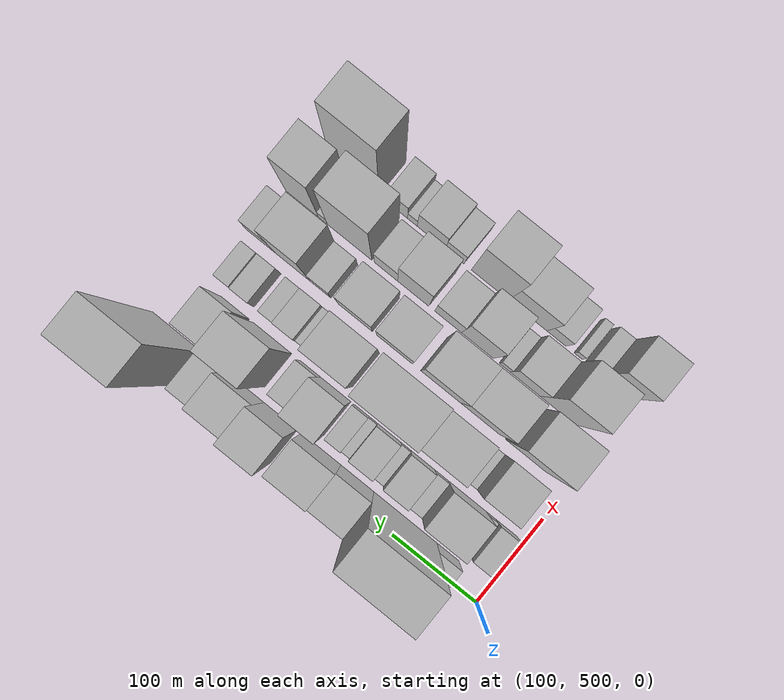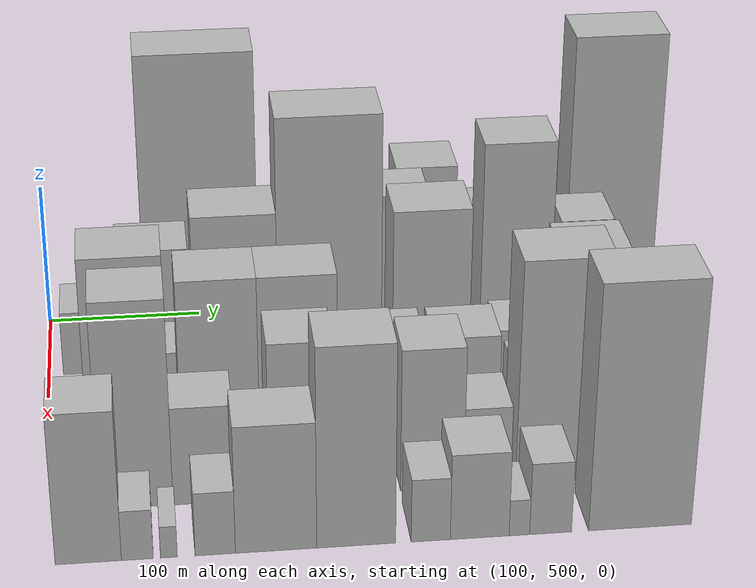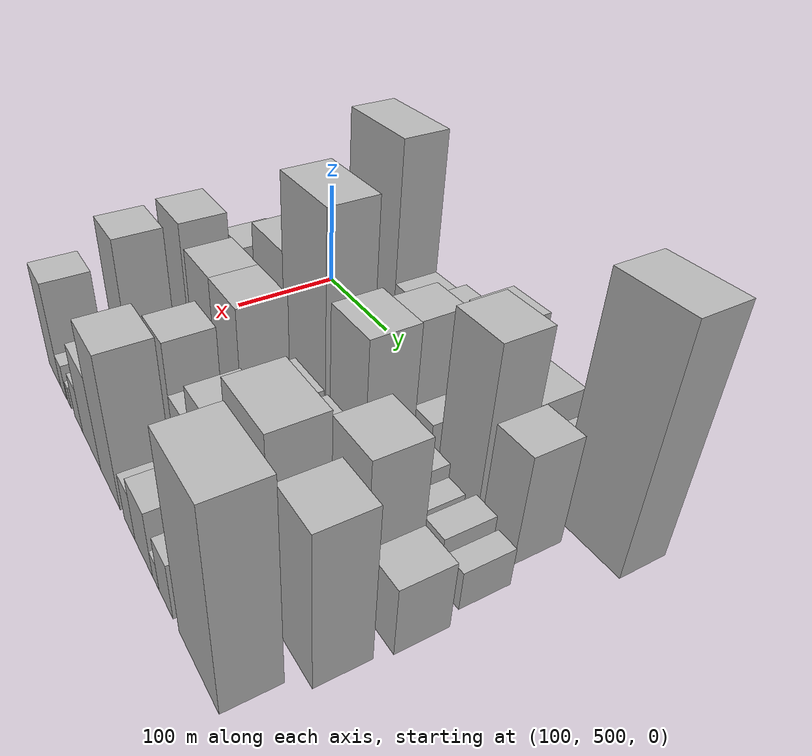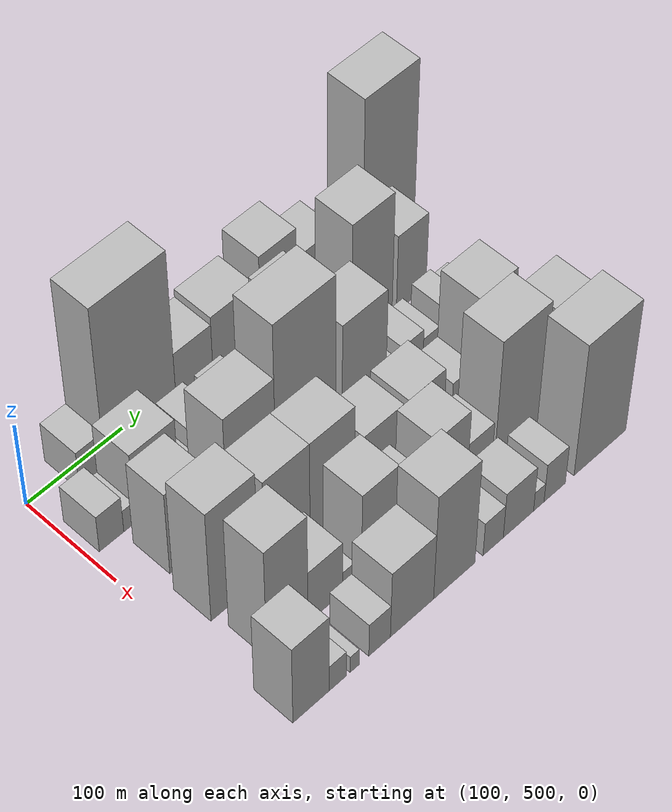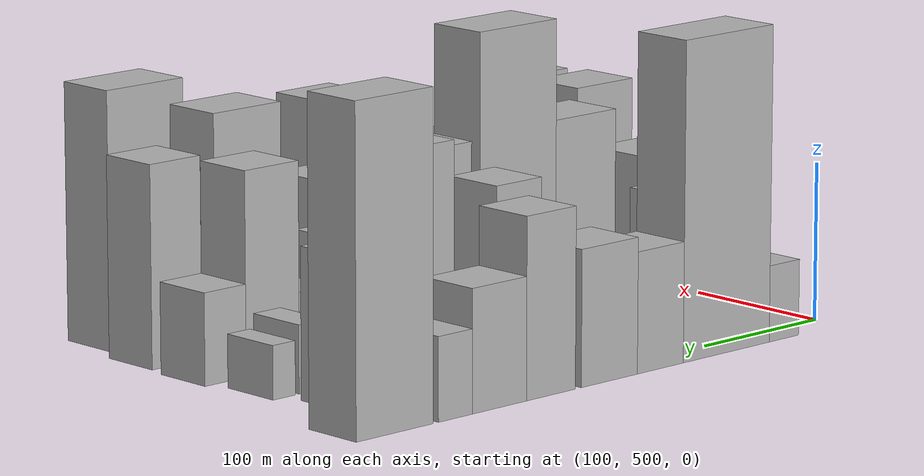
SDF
<sdf version="1.6">
 <world name="default">
  <model name="building_44">
   <static>1</static>
   <pose>100.0000 550.2050 0 0.000000 0.000000 0.000000</pose>
   <link name="link">
    <pose>0 0 24.00 0 0 0</pose>
    <collision name="collision"><geometry><box><size>40.0000 26.4977 48.0000</size></box></geometry></collision>
    <visual name="visual">
     <cast_shadows>0</cast_shadows>
     <geometry><box><size>40.0000 26.4977 48.0000</size></box></geometry>
     <material>
      <script>
       <uri>model://HANNAS_wall/materials/scripts</uri>
       <uri>model://HANNAS_wall/materials/textures</uri>
       <name>vrc/HANNAS_wall</name>
      </script>
     </material>
    </visual>
   </link>
  </model>
  <model name="building_45">
   <static>1</static>
   <pose>100.0000 601.4771 0 0.000000 0.000000 0.000000</pose>
   <link name="link">
    <pose>0 0 99.00 0 0 0</pose>
    <collision name="collision"><geometry><box><size>40.0000 76.0464 198.0000</size></box></geometry></collision>
    <visual name="visual">
     <cast_shadows>0</cast_shadows>
     <geometry><box><size>40.0000 76.0464 198.0000</size></box></geometry>
     <material>
      <script>
       <uri>model://HANNAS_wall/materials/scripts</uri>
       <uri>model://HANNAS_wall/materials/textures</uri>
       <name>vrc/HANNAS_wall</name>
      </script>
     </material>
    </visual>
   </link>
  </model>
  <model name="building_46">
   <static>1</static>
   <pose>100.0000 659.3488 0 0.000000 0.000000 0.000000</pose>
   <link name="link">
    <pose>0 0 37.50 0 0 0</pose>
    <collision name="collision"><geometry><box><size>40.0000 39.6969 75.0000</size></box></geometry></collision>
    <visual name="visual">
     <cast_shadows>0</cast_shadows>
     <geometry><box><size>40.0000 39.6969 75.0000</size></box></geometry>
     <material>
      <script>
       <uri>model://HANNAS_wall/materials/scripts</uri>
       <uri>model://HANNAS_wall/materials/textures</uri>
       <name>vrc/HANNAS_wall</name>
      </script>
     </material>
    </visual>
   </link>
  </model>
  <model name="building_47">
   <static>1</static>
   <pose>100.0000 702.9278 0 0.000000 0.000000 0.000000</pose>
   <link name="link">
    <pose>0 0 42.00 0 0 0</pose>
    <collision name="collision"><geometry><box><size>40.0000 47.4612 84.0000</size></box></geometry></collision>
    <visual name="visual">
     <cast_shadows>0</cast_shadows>
     <geometry><box><size>40.0000 47.4612 84.0000</size></box></geometry>
     <material>
      <script>
       <uri>model://HANNAS_wall/materials/scripts</uri>
       <uri>model://HANNAS_wall/materials/textures</uri>
       <name>vrc/HANNAS_wall</name>
      </script>
     </material>
    </visual>
   </link>
  </model>
  <model name="building_48">
   <static>1</static>
   <pose>100.0000 751.9403 0 0.000000 0.000000 0.000000</pose>
   <link name="link">
    <pose>0 0 55.50 0 0 0</pose>
    <collision name="collision"><geometry><box><size>40.0000 40.5638 111.0000</size></box></geometry></collision>
    <visual name="visual">
     <cast_shadows>0</cast_shadows>
     <geometry><box><size>40.0000 40.5638 111.0000</size></box></geometry>
     <material>
      <script>
       <uri>model://HANNAS_wall/materials/scripts</uri>
       <uri>model://HANNAS_wall/materials/textures</uri>
       <name>vrc/HANNAS_wall</name>
      </script>
     </material>
    </visual>
   </link>
  </model>
  <model name="building_49">
   <static>1</static>
   <pose>100.0000 794.2953 0 0.000000 0.000000 0.000000</pose>
   <link name="link">
    <pose>0 0 37.50 0 0 0</pose>
    <collision name="collision"><geometry><box><size>40.0000 44.1461 75.0000</size></box></geometry></collision>
    <visual name="visual">
     <cast_shadows>0</cast_shadows>
     <geometry><box><size>40.0000 44.1461 75.0000</size></box></geometry>
     <material>
      <script>
       <uri>model://HANNAS_wall/materials/scripts</uri>
       <uri>model://HANNAS_wall/materials/textures</uri>
       <name>vrc/HANNAS_wall</name>
      </script>
     </material>
    </visual>
   </link>
  </model>
  <model name="building_50">
   <static>1</static>
   <pose>100.0000 829.9106 0 0.000000 0.000000 0.000000</pose>
   <link name="link">
    <pose>0 0 25.50 0 0 0</pose>
    <collision name="collision"><geometry><box><size>40.0000 27.0845 51.0000</size></box></geometry></collision>
    <visual name="visual">
     <cast_shadows>0</cast_shadows>
     <geometry><box><size>40.0000 27.0845 51.0000</size></box></geometry>
     <material>
      <script>
       <uri>model://HANNAS_wall/materials/scripts</uri>
       <uri>model://HANNAS_wall/materials/textures</uri>
       <name>vrc/HANNAS_wall</name>
      </script>
     </material>
    </visual>
   </link>
  </model>
  <model name="building_51">
   <static>1</static>
   <pose>100.0000 877.7464 0 0.000000 0.000000 0.000000</pose>
   <link name="link">
    <pose>0 0 99.00 0 0 0</pose>
    <collision name="collision"><geometry><box><size>40.0000 60.5870 198.0000</size></box></geometry></collision>
    <visual name="visual">
     <cast_shadows>0</cast_shadows>
     <geometry><box><size>40.0000 60.5870 198.0000</size></box></geometry>
     <material>
      <script>
       <uri>model://HANNAS_wall/materials/scripts</uri>
       <uri>model://HANNAS_wall/materials/textures</uri>
       <name>vrc/HANNAS_wall</name>
      </script>
     </material>
    </visual>
   </link>
  </model>
  <model name="building_92">
   <static>1</static>
   <pose>152.0000 521.8158 0 0.000000 0.000000 0.000000</pose>
   <link name="link">
    <pose>0 0 22.50 0 0 0</pose>
    <collision name="collision"><geometry><box><size>40.0000 25.1232 45.0000</size></box></geometry></collision>
    <visual name="visual">
     <cast_shadows>0</cast_shadows>
     <geometry><box><size>40.0000 25.1232 45.0000</size></box></geometry>
     <material>
      <script>
       <uri>model://HANNAS_wall/materials/scripts</uri>
       <uri>model://HANNAS_wall/materials/textures</uri>
       <name>vrc/HANNAS_wall</name>
      </script>
     </material>
    </visual>
   </link>
  </model>
  <model name="building_93">
   <static>1</static>
   <pose>152.0000 540.1732 0 0.000000 0.000000 0.000000</pose>
   <link name="link">
    <pose>0 0 13.50 0 0 0</pose>
    <collision name="collision"><geometry><box><size>40.0000 11.5915 27.0000</size></box></geometry></collision>
    <visual name="visual">
     <cast_shadows>0</cast_shadows>
     <geometry><box><size>40.0000 11.5915 27.0000</size></box></geometry>
     <material>
      <script>
       <uri>model://HANNAS_wall/materials/scripts</uri>
       <uri>model://HANNAS_wall/materials/textures</uri>
       <name>vrc/HANNAS_wall</name>
      </script>
     </material>
    </visual>
   </link>
  </model>
  <model name="building_94">
   <static>1</static>
   <pose>152.0000 569.0286 0 0.000000 0.000000 0.000000</pose>
   <link name="link">
    <pose>0 0 43.50 0 0 0</pose>
    <collision name="collision"><geometry><box><size>40.0000 46.1193 87.0000</size></box></geometry></collision>
    <visual name="visual">
     <cast_shadows>0</cast_shadows>
     <geometry><box><size>40.0000 46.1193 87.0000</size></box></geometry>
     <material>
      <script>
       <uri>model://HANNAS_wall/materials/scripts</uri>
       <uri>model://HANNAS_wall/materials/textures</uri>
       <name>vrc/HANNAS_wall</name>
      </script>
     </material>
    </visual>
   </link>
  </model>
  <model name="building_95">
   <static>1</static>
   <pose>152.0000 600.2725 0 0.000000 0.000000 0.000000</pose>
   <link name="link">
    <pose>0 0 15.00 0 0 0</pose>
    <collision name="collision"><geometry><box><size>40.0000 16.3685 30.0000</size></box></geometry></collision>
    <visual name="visual">
     <cast_shadows>0</cast_shadows>
     <geometry><box><size>40.0000 16.3685 30.0000</size></box></geometry>
     <material>
      <script>
       <uri>model://HANNAS_wall/materials/scripts</uri>
       <uri>model://HANNAS_wall/materials/textures</uri>
       <name>vrc/HANNAS_wall</name>
      </script>
     </material>
    </visual>
   </link>
  </model>
  <model name="building_96">
   <static>1</static>
   <pose>152.0000 622.7803 0 0.000000 0.000000 0.000000</pose>
   <link name="link">
    <pose>0 0 27.00 0 0 0</pose>
    <collision name="collision"><geometry><box><size>40.0000 28.6470 54.0000</size></box></geometry></collision>
    <visual name="visual">
     <cast_shadows>0</cast_shadows>
     <geometry><box><size>40.0000 28.6470 54.0000</size></box></geometry>
     <material>
      <script>
       <uri>model://HANNAS_wall/materials/scripts</uri>
       <uri>model://HANNAS_wall/materials/textures</uri>
       <name>vrc/HANNAS_wall</name>
      </script>
     </material>
    </visual>
   </link>
  </model>
  <model name="building_97">
   <static>1</static>
   <pose>152.0000 643.0475 0 0.000000 0.000000 0.000000</pose>
   <link name="link">
    <pose>0 0 12.00 0 0 0</pose>
    <collision name="collision"><geometry><box><size>40.0000 11.8875 24.0000</size></box></geometry></collision>
    <visual name="visual">
     <cast_shadows>0</cast_shadows>
     <geometry><box><size>40.0000 11.8875 24.0000</size></box></geometry>
     <material>
      <script>
       <uri>model://HANNAS_wall/materials/scripts</uri>
       <uri>model://HANNAS_wall/materials/textures</uri>
       <name>vrc/HANNAS_wall</name>
      </script>
     </material>
    </visual>
   </link>
  </model>
  <model name="building_98">
   <static>1</static>
   <pose>152.0000 662.9806 0 0.000000 0.000000 0.000000</pose>
   <link name="link">
    <pose>0 0 25.50 0 0 0</pose>
    <collision name="collision"><geometry><box><size>40.0000 27.9787 51.0000</size></box></geometry></collision>
    <visual name="visual">
     <cast_shadows>0</cast_shadows>
     <geometry><box><size>40.0000 27.9787 51.0000</size></box></geometry>
     <material>
      <script>
       <uri>model://HANNAS_wall/materials/scripts</uri>
       <uri>model://HANNAS_wall/materials/textures</uri>
       <name>vrc/HANNAS_wall</name>
      </script>
     </material>
    </visual>
   </link>
  </model>
  <model name="building_99">
   <static>1</static>
   <pose>152.0000 682.0288 0 0.000000 0.000000 0.000000</pose>
   <link name="link">
    <pose>0 0 12.00 0 0 0</pose>
    <collision name="collision"><geometry><box><size>40.0000 10.1176 24.0000</size></box></geometry></collision>
    <visual name="visual">
     <cast_shadows>0</cast_shadows>
     <geometry><box><size>40.0000 10.1176 24.0000</size></box></geometry>
     <material>
      <script>
       <uri>model://HANNAS_wall/materials/scripts</uri>
       <uri>model://HANNAS_wall/materials/textures</uri>
       <name>vrc/HANNAS_wall</name>
      </script>
     </material>
    </visual>
   </link>
  </model>
  <model name="building_100">
   <static>1</static>
   <pose>152.0000 696.5672 0 0.000000 0.000000 0.000000</pose>
   <link name="link">
    <pose>0 0 18.00 0 0 0</pose>
    <collision name="collision"><geometry><box><size>40.0000 18.9594 36.0000</size></box></geometry></collision>
    <visual name="visual">
     <cast_shadows>0</cast_shadows>
     <geometry><box><size>40.0000 18.9594 36.0000</size></box></geometry>
     <material>
      <script>
       <uri>model://HANNAS_wall/materials/scripts</uri>
       <uri>model://HANNAS_wall/materials/textures</uri>
       <name>vrc/HANNAS_wall</name>
      </script>
     </material>
    </visual>
   </link>
  </model>
  <model name="building_101">
   <static>1</static>
   <pose>152.0000 727.6724 0 0.000000 0.000000 0.000000</pose>
   <link name="link">
    <pose>0 0 58.50 0 0 0</pose>
    <collision name="collision"><geometry><box><size>40.0000 37.2510 117.0000</size></box></geometry></collision>
    <visual name="visual">
     <cast_shadows>0</cast_shadows>
     <geometry><box><size>40.0000 37.2510 117.0000</size></box></geometry>
     <material>
      <script>
       <uri>model://HANNAS_wall/materials/scripts</uri>
       <uri>model://HANNAS_wall/materials/textures</uri>
       <name>vrc/HANNAS_wall</name>
      </script>
     </material>
    </visual>
   </link>
  </model>
  <model name="building_102">
   <static>1</static>
   <pose>152.0000 758.6101 0 0.000000 0.000000 0.000000</pose>
   <link name="link">
    <pose>0 0 22.50 0 0 0</pose>
    <collision name="collision"><geometry><box><size>40.0000 24.6244 45.0000</size></box></geometry></collision>
    <visual name="visual">
     <cast_shadows>0</cast_shadows>
     <geometry><box><size>40.0000 24.6244 45.0000</size></box></geometry>
     <material>
      <script>
       <uri>model://HANNAS_wall/materials/scripts</uri>
       <uri>model://HANNAS_wall/materials/textures</uri>
       <name>vrc/HANNAS_wall</name>
      </script>
     </material>
    </visual>
   </link>
  </model>
  <model name="building_103">
   <static>1</static>
   <pose>152.0000 804.1231 0 0.000000 0.000000 0.000000</pose>
   <link name="link">
    <pose>0 0 75.00 0 0 0</pose>
    <collision name="collision"><geometry><box><size>40.0000 46.4016 150.0000</size></box></geometry></collision>
    <visual name="visual">
     <cast_shadows>0</cast_shadows>
     <geometry><box><size>40.0000 46.4016 150.0000</size></box></geometry>
     <material>
      <script>
       <uri>model://HANNAS_wall/materials/scripts</uri>
       <uri>model://HANNAS_wall/materials/textures</uri>
       <name>vrc/HANNAS_wall</name>
      </script>
     </material>
    </visual>
   </link>
  </model>
  <model name="building_104">
   <static>1</static>
   <pose>152.0000 849.6271 0 0.000000 0.000000 0.000000</pose>
   <link name="link">
    <pose>0 0 46.50 0 0 0</pose>
    <collision name="collision"><geometry><box><size>40.0000 34.6065 93.0000</size></box></geometry></collision>
    <visual name="visual">
     <cast_shadows>0</cast_shadows>
     <geometry><box><size>40.0000 34.6065 93.0000</size></box></geometry>
     <material>
      <script>
       <uri>model://HANNAS_wall/materials/scripts</uri>
       <uri>model://HANNAS_wall/materials/textures</uri>
       <name>vrc/HANNAS_wall</name>
      </script>
     </material>
    </visual>
   </link>
  </model>
  <model name="building_142">
   <static>1</static>
   <pose>204.0000 552.2413 0 0.000000 0.000000 0.000000</pose>
   <link name="link">
    <pose>0 0 51.00 0 0 0</pose>
    <collision name="collision"><geometry><box><size>40.0000 38.9431 102.0000</size></box></geometry></collision>
    <visual name="visual">
     <cast_shadows>0</cast_shadows>
     <geometry><box><size>40.0000 38.9431 102.0000</size></box></geometry>
     <material>
      <script>
       <uri>model://HANNAS_wall/materials/scripts</uri>
       <uri>model://HANNAS_wall/materials/textures</uri>
       <name>vrc/HANNAS_wall</name>
      </script>
     </material>
    </visual>
   </link>
  </model>
  <model name="building_143">
   <static>1</static>
   <pose>204.0000 582.3987 0 0.000000 0.000000 0.000000</pose>
   <link name="link">
    <pose>0 0 21.00 0 0 0</pose>
    <collision name="collision"><geometry><box><size>40.0000 21.3717 42.0000</size></box></geometry></collision>
    <visual name="visual">
     <cast_shadows>0</cast_shadows>
     <geometry><box><size>40.0000 21.3717 42.0000</size></box></geometry>
     <material>
      <script>
       <uri>model://HANNAS_wall/materials/scripts</uri>
       <uri>model://HANNAS_wall/materials/textures</uri>
       <name>vrc/HANNAS_wall</name>
      </script>
     </material>
    </visual>
   </link>
  </model>
  <model name="building_144">
   <static>1</static>
   <pose>204.0000 619.0191 0 0.000000 0.000000 0.000000</pose>
   <link name="link">
    <pose>0 0 67.50 0 0 0</pose>
    <collision name="collision"><geometry><box><size>40.0000 51.8690 135.0000</size></box></geometry></collision>
    <visual name="visual">
     <cast_shadows>0</cast_shadows>
     <geometry><box><size>40.0000 51.8690 135.0000</size></box></geometry>
     <material>
      <script>
       <uri>model://HANNAS_wall/materials/scripts</uri>
       <uri>model://HANNAS_wall/materials/textures</uri>
       <name>vrc/HANNAS_wall</name>
      </script>
     </material>
    </visual>
   </link>
  </model>
  <model name="building_145">
   <static>1</static>
   <pose>204.0000 677.3726 0 0.000000 0.000000 0.000000</pose>
   <link name="link">
    <pose>0 0 99.00 0 0 0</pose>
    <collision name="collision"><geometry><box><size>40.0000 64.8381 198.0000</size></box></geometry></collision>
    <visual name="visual">
     <cast_shadows>0</cast_shadows>
     <geometry><box><size>40.0000 64.8381 198.0000</size></box></geometry>
     <material>
      <script>
       <uri>model://HANNAS_wall/materials/scripts</uri>
       <uri>model://HANNAS_wall/materials/textures</uri>
       <name>vrc/HANNAS_wall</name>
      </script>
     </material>
    </visual>
   </link>
  </model>
  <model name="building_146">
   <static>1</static>
   <pose>204.0000 741.1813 0 0.000000 0.000000 0.000000</pose>
   <link name="link">
    <pose>0 0 66.00 0 0 0</pose>
    <collision name="collision"><geometry><box><size>40.0000 48.7793 132.0000</size></box></geometry></collision>
    <visual name="visual">
     <cast_shadows>0</cast_shadows>
     <geometry><box><size>40.0000 48.7793 132.0000</size></box></geometry>
     <material>
      <script>
       <uri>model://HANNAS_wall/materials/scripts</uri>
       <uri>model://HANNAS_wall/materials/textures</uri>
       <name>vrc/HANNAS_wall</name>
      </script>
     </material>
    </visual>
   </link>
  </model>
  <model name="building_147">
   <static>1</static>
   <pose>204.0000 777.0443 0 0.000000 0.000000 0.000000</pose>
   <link name="link">
    <pose>0 0 13.50 0 0 0</pose>
    <collision name="collision"><geometry><box><size>40.0000 12.9466 27.0000</size></box></geometry></collision>
    <visual name="visual">
     <cast_shadows>0</cast_shadows>
     <geometry><box><size>40.0000 12.9466 27.0000</size></box></geometry>
     <material>
      <script>
       <uri>model://HANNAS_wall/materials/scripts</uri>
       <uri>model://HANNAS_wall/materials/textures</uri>
       <name>vrc/HANNAS_wall</name>
      </script>
     </material>
    </visual>
   </link>
  </model>
  <model name="building_148">
   <static>1</static>
   <pose>204.0000 795.7457 0 0.000000 0.000000 0.000000</pose>
   <link name="link">
    <pose>0 0 22.50 0 0 0</pose>
    <collision name="collision"><geometry><box><size>40.0000 24.4561 45.0000</size></box></geometry></collision>
    <visual name="visual">
     <cast_shadows>0</cast_shadows>
     <geometry><box><size>40.0000 24.4561 45.0000</size></box></geometry>
     <material>
      <script>
       <uri>model://HANNAS_wall/materials/scripts</uri>
       <uri>model://HANNAS_wall/materials/textures</uri>
       <name>vrc/HANNAS_wall</name>
      </script>
     </material>
    </visual>
   </link>
  </model>
  <model name="building_149">
   <static>1</static>
   <pose>204.0000 817.1471 0 0.000000 0.000000 0.000000</pose>
   <link name="link">
    <pose>0 0 16.50 0 0 0</pose>
    <collision name="collision"><geometry><box><size>40.0000 18.3468 33.0000</size></box></geometry></collision>
    <visual name="visual">
     <cast_shadows>0</cast_shadows>
     <geometry><box><size>40.0000 18.3468 33.0000</size></box></geometry>
     <material>
      <script>
       <uri>model://HANNAS_wall/materials/scripts</uri>
       <uri>model://HANNAS_wall/materials/textures</uri>
       <name>vrc/HANNAS_wall</name>
      </script>
     </material>
    </visual>
   </link>
  </model>
  <model name="building_150">
   <static>1</static>
   <pose>204.0000 847.0164 0 0.000000 0.000000 0.000000</pose>
   <link name="link">
    <pose>0 0 21.00 0 0 0</pose>
    <collision name="collision"><geometry><box><size>40.0000 21.3917 42.0000</size></box></geometry></collision>
    <visual name="visual">
     <cast_shadows>0</cast_shadows>
     <geometry><box><size>40.0000 21.3917 42.0000</size></box></geometry>
     <material>
      <script>
       <uri>model://HANNAS_wall/materials/scripts</uri>
       <uri>model://HANNAS_wall/materials/textures</uri>
       <name>vrc/HANNAS_wall</name>
      </script>
     </material>
    </visual>
   </link>
  </model>
  <model name="building_151">
   <static>1</static>
   <pose>204.0000 869.5550 0 0.000000 0.000000 0.000000</pose>
   <link name="link">
    <pose>0 0 16.50 0 0 0</pose>
    <collision name="collision"><geometry><box><size>40.0000 17.6856 33.0000</size></box></geometry></collision>
    <visual name="visual">
     <cast_shadows>0</cast_shadows>
     <geometry><box><size>40.0000 17.6856 33.0000</size></box></geometry>
     <material>
      <script>
       <uri>model://HANNAS_wall/materials/scripts</uri>
       <uri>model://HANNAS_wall/materials/textures</uri>
       <name>vrc/HANNAS_wall</name>
      </script>
     </material>
    </visual>
   </link>
  </model>
  <model name="building_194">
   <static>1</static>
   <pose>256.0000 549.7750 0 0.000000 0.000000 0.000000</pose>
   <link name="link">
    <pose>0 0 69.00 0 0 0</pose>
    <collision name="collision"><geometry><box><size>40.0000 49.1887 138.0000</size></box></geometry></collision>
    <visual name="visual">
     <cast_shadows>0</cast_shadows>
     <geometry><box><size>40.0000 49.1887 138.0000</size></box></geometry>
     <material>
      <script>
       <uri>model://HANNAS_wall/materials/scripts</uri>
       <uri>model://HANNAS_wall/materials/textures</uri>
       <name>vrc/HANNAS_wall</name>
      </script>
     </material>
    </visual>
   </link>
  </model>
  <model name="building_195">
   <static>1</static>
   <pose>256.0000 605.2740 0 0.000000 0.000000 0.000000</pose>
   <link name="link">
    <pose>0 0 60.00 0 0 0</pose>
    <collision name="collision"><geometry><box><size>40.0000 47.8093 120.0000</size></box></geometry></collision>
    <visual name="visual">
     <cast_shadows>0</cast_shadows>
     <geometry><box><size>40.0000 47.8093 120.0000</size></box></geometry>
     <material>
      <script>
       <uri>model://HANNAS_wall/materials/scripts</uri>
       <uri>model://HANNAS_wall/materials/textures</uri>
       <name>vrc/HANNAS_wall</name>
      </script>
     </material>
    </visual>
   </link>
  </model>
  <model name="building_196">
   <static>1</static>
   <pose>256.0000 652.9921 0 0.000000 0.000000 0.000000</pose>
   <link name="link">
    <pose>0 0 60.00 0 0 0</pose>
    <collision name="collision"><geometry><box><size>40.0000 47.6268 120.0000</size></box></geometry></collision>
    <visual name="visual">
     <cast_shadows>0</cast_shadows>
     <geometry><box><size>40.0000 47.6268 120.0000</size></box></geometry>
     <material>
      <script>
       <uri>model://HANNAS_wall/materials/scripts</uri>
       <uri>model://HANNAS_wall/materials/textures</uri>
       <name>vrc/HANNAS_wall</name>
      </script>
     </material>
    </visual>
   </link>
  </model>
  <model name="building_197">
   <static>1</static>
   <pose>256.0000 708.3618 0 0.000000 0.000000 0.000000</pose>
   <link name="link">
    <pose>0 0 36.00 0 0 0</pose>
    <collision name="collision"><geometry><box><size>40.0000 43.1126 72.0000</size></box></geometry></collision>
    <visual name="visual">
     <cast_shadows>0</cast_shadows>
     <geometry><box><size>40.0000 43.1126 72.0000</size></box></geometry>
     <material>
      <script>
       <uri>model://HANNAS_wall/materials/scripts</uri>
       <uri>model://HANNAS_wall/materials/textures</uri>
       <name>vrc/HANNAS_wall</name>
      </script>
     </material>
    </visual>
   </link>
  </model>
  <model name="building_198">
   <static>1</static>
   <pose>256.0000 755.5880 0 0.000000 0.000000 0.000000</pose>
   <link name="link">
    <pose>0 0 36.00 0 0 0</pose>
    <collision name="collision"><geometry><box><size>40.0000 41.3399 72.0000</size></box></geometry></collision>
    <visual name="visual">
     <cast_shadows>0</cast_shadows>
     <geometry><box><size>40.0000 41.3399 72.0000</size></box></geometry>
     <material>
      <script>
       <uri>model://HANNAS_wall/materials/scripts</uri>
       <uri>model://HANNAS_wall/materials/textures</uri>
       <name>vrc/HANNAS_wall</name>
      </script>
     </material>
    </visual>
   </link>
  </model>
  <model name="building_199">
   <static>1</static>
   <pose>256.0000 797.8937 0 0.000000 0.000000 0.000000</pose>
   <link name="link">
    <pose>0 0 22.50 0 0 0</pose>
    <collision name="collision"><geometry><box><size>40.0000 25.2714 45.0000</size></box></geometry></collision>
    <visual name="visual">
     <cast_shadows>0</cast_shadows>
     <geometry><box><size>40.0000 25.2714 45.0000</size></box></geometry>
     <material>
      <script>
       <uri>model://HANNAS_wall/materials/scripts</uri>
       <uri>model://HANNAS_wall/materials/textures</uri>
       <name>vrc/HANNAS_wall</name>
      </script>
     </material>
    </visual>
   </link>
  </model>
  <model name="building_200">
   <static>1</static>
   <pose>256.0000 831.9176 0 0.000000 0.000000 0.000000</pose>
   <link name="link">
    <pose>0 0 63.00 0 0 0</pose>
    <collision name="collision"><geometry><box><size>40.0000 42.7765 126.0000</size></box></geometry></collision>
    <visual name="visual">
     <cast_shadows>0</cast_shadows>
     <geometry><box><size>40.0000 42.7765 126.0000</size></box></geometry>
     <material>
      <script>
       <uri>model://HANNAS_wall/materials/scripts</uri>
       <uri>model://HANNAS_wall/materials/textures</uri>
       <name>vrc/HANNAS_wall</name>
      </script>
     </material>
    </visual>
   </link>
  </model>
  <model name="building_201">
   <static>1</static>
   <pose>256.0000 869.6098 0 0.000000 0.000000 0.000000</pose>
   <link name="link">
    <pose>0 0 28.50 0 0 0</pose>
    <collision name="collision"><geometry><box><size>40.0000 32.6079 57.0000</size></box></geometry></collision>
    <visual name="visual">
     <cast_shadows>0</cast_shadows>
     <geometry><box><size>40.0000 32.6079 57.0000</size></box></geometry>
     <material>
      <script>
       <uri>model://HANNAS_wall/materials/scripts</uri>
       <uri>model://HANNAS_wall/materials/textures</uri>
       <name>vrc/HANNAS_wall</name>
      </script>
     </material>
    </visual>
   </link>
  </model>
  <model name="building_236">
   <static>1</static>
   <pose>308.0000 552.9648 0 0.000000 0.000000 0.000000</pose>
   <link name="link">
    <pose>0 0 69.00 0 0 0</pose>
    <collision name="collision"><geometry><box><size>40.0000 42.9699 138.0000</size></box></geometry></collision>
    <visual name="visual">
     <cast_shadows>0</cast_shadows>
     <geometry><box><size>40.0000 42.9699 138.0000</size></box></geometry>
     <material>
      <script>
       <uri>model://HANNAS_wall/materials/scripts</uri>
       <uri>model://HANNAS_wall/materials/textures</uri>
       <name>vrc/HANNAS_wall</name>
      </script>
     </material>
    </visual>
   </link>
  </model>
  <model name="building_237">
   <static>1</static>
   <pose>308.0000 592.6022 0 0.000000 0.000000 0.000000</pose>
   <link name="link">
    <pose>0 0 33.00 0 0 0</pose>
    <collision name="collision"><geometry><box><size>40.0000 36.3050 66.0000</size></box></geometry></collision>
    <visual name="visual">
     <cast_shadows>0</cast_shadows>
     <geometry><box><size>40.0000 36.3050 66.0000</size></box></geometry>
     <material>
      <script>
       <uri>model://HANNAS_wall/materials/scripts</uri>
       <uri>model://HANNAS_wall/materials/textures</uri>
       <name>vrc/HANNAS_wall</name>
      </script>
     </material>
    </visual>
   </link>
  </model>
  <model name="building_238">
   <static>1</static>
   <pose>308.0000 617.2981 0 0.000000 0.000000 0.000000</pose>
   <link name="link">
    <pose>0 0 13.50 0 0 0</pose>
    <collision name="collision"><geometry><box><size>40.0000 13.0868 27.0000</size></box></geometry></collision>
    <visual name="visual">
     <cast_shadows>0</cast_shadows>
     <geometry><box><size>40.0000 13.0868 27.0000</size></box></geometry>
     <material>
      <script>
       <uri>model://HANNAS_wall/materials/scripts</uri>
       <uri>model://HANNAS_wall/materials/textures</uri>
       <name>vrc/HANNAS_wall</name>
      </script>
     </material>
    </visual>
   </link>
  </model>
  <model name="building_239">
   <static>1</static>
   <pose>308.0000 650.1296 0 0.000000 0.000000 0.000000</pose>
   <link name="link">
    <pose>0 0 52.50 0 0 0</pose>
    <collision name="collision"><geometry><box><size>40.0000 38.5762 105.0000</size></box></geometry></collision>
    <visual name="visual">
     <cast_shadows>0</cast_shadows>
     <geometry><box><size>40.0000 38.5762 105.0000</size></box></geometry>
     <material>
      <script>
       <uri>model://HANNAS_wall/materials/scripts</uri>
       <uri>model://HANNAS_wall/materials/textures</uri>
       <name>vrc/HANNAS_wall</name>
      </script>
     </material>
    </visual>
   </link>
  </model>
  <model name="building_240">
   <static>1</static>
   <pose>308.0000 685.6534 0 0.000000 0.000000 0.000000</pose>
   <link name="link">
    <pose>0 0 30.00 0 0 0</pose>
    <collision name="collision"><geometry><box><size>40.0000 32.4712 60.0000</size></box></geometry></collision>
    <visual name="visual">
     <cast_shadows>0</cast_shadows>
     <geometry><box><size>40.0000 32.4712 60.0000</size></box></geometry>
     <material>
      <script>
       <uri>model://HANNAS_wall/materials/scripts</uri>
       <uri>model://HANNAS_wall/materials/textures</uri>
       <name>vrc/HANNAS_wall</name>
      </script>
     </material>
    </visual>
   </link>
  </model>
  <model name="building_241">
   <static>1</static>
   <pose>308.0000 727.7702 0 0.000000 0.000000 0.000000</pose>
   <link name="link">
    <pose>0 0 48.00 0 0 0</pose>
    <collision name="collision"><geometry><box><size>40.0000 37.7623 96.0000</size></box></geometry></collision>
    <visual name="visual">
     <cast_shadows>0</cast_shadows>
     <geometry><box><size>40.0000 37.7623 96.0000</size></box></geometry>
     <material>
      <script>
       <uri>model://HANNAS_wall/materials/scripts</uri>
       <uri>model://HANNAS_wall/materials/textures</uri>
       <name>vrc/HANNAS_wall</name>
      </script>
     </material>
    </visual>
   </link>
  </model>
  <model name="building_242">
   <static>1</static>
   <pose>308.0000 760.7582 0 0.000000 0.000000 0.000000</pose>
   <link name="link">
    <pose>0 0 27.00 0 0 0</pose>
    <collision name="collision"><geometry><box><size>40.0000 28.2138 54.0000</size></box></geometry></collision>
    <visual name="visual">
     <cast_shadows>0</cast_shadows>
     <geometry><box><size>40.0000 28.2138 54.0000</size></box></geometry>
     <material>
      <script>
       <uri>model://HANNAS_wall/materials/scripts</uri>
       <uri>model://HANNAS_wall/materials/textures</uri>
       <name>vrc/HANNAS_wall</name>
      </script>
     </material>
    </visual>
   </link>
  </model>
  <model name="building_243">
   <static>1</static>
   <pose>308.0000 804.9554 0 0.000000 0.000000 0.000000</pose>
   <link name="link">
    <pose>0 0 75.00 0 0 0</pose>
    <collision name="collision"><geometry><box><size>40.0000 54.1804 150.0000</size></box></geometry></collision>
    <visual name="visual">
     <cast_shadows>0</cast_shadows>
     <geometry><box><size>40.0000 54.1804 150.0000</size></box></geometry>
     <material>
      <script>
       <uri>model://HANNAS_wall/materials/scripts</uri>
       <uri>model://HANNAS_wall/materials/textures</uri>
       <name>vrc/HANNAS_wall</name>
      </script>
     </material>
    </visual>
   </link>
  </model>
  <model name="building_244">
   <static>1</static>
   <pose>308.0000 837.4909 0 0.000000 0.000000 0.000000</pose>
   <link name="link">
    <pose>0 0 12.00 0 0 0</pose>
    <collision name="collision"><geometry><box><size>40.0000 10.8906 24.0000</size></box></geometry></collision>
    <visual name="visual">
     <cast_shadows>0</cast_shadows>
     <geometry><box><size>40.0000 10.8906 24.0000</size></box></geometry>
     <material>
      <script>
       <uri>model://HANNAS_wall/materials/scripts</uri>
       <uri>model://HANNAS_wall/materials/textures</uri>
       <name>vrc/HANNAS_wall</name>
      </script>
     </material>
    </visual>
   </link>
  </model>
  <model name="building_245">
   <static>1</static>
   <pose>308.0000 862.7602 0 0.000000 0.000000 0.000000</pose>
   <link name="link">
    <pose>0 0 63.00 0 0 0</pose>
    <collision name="collision"><geometry><box><size>40.0000 39.6481 126.0000</size></box></geometry></collision>
    <visual name="visual">
     <cast_shadows>0</cast_shadows>
     <geometry><box><size>40.0000 39.6481 126.0000</size></box></geometry>
     <material>
      <script>
       <uri>model://HANNAS_wall/materials/scripts</uri>
       <uri>model://HANNAS_wall/materials/textures</uri>
       <name>vrc/HANNAS_wall</name>
      </script>
     </material>
    </visual>
   </link>
  </model>
  <model name="building_290">
   <static>1</static>
   <pose>360.0000 524.9163 0 0.000000 0.000000 0.000000</pose>
   <link name="link">
    <pose>0 0 49.50 0 0 0</pose>
    <collision name="collision"><geometry><box><size>40.0000 37.1264 99.0000</size></box></geometry></collision>
    <visual name="visual">
     <cast_shadows>0</cast_shadows>
     <geometry><box><size>40.0000 37.1264 99.0000</size></box></geometry>
     <material>
      <script>
       <uri>model://HANNAS_wall/materials/scripts</uri>
       <uri>model://HANNAS_wall/materials/textures</uri>
       <name>vrc/HANNAS_wall</name>
      </script>
     </material>
    </visual>
   </link>
  </model>
  <model name="building_291">
   <static>1</static>
   <pose>360.0000 552.4514 0 0.000000 0.000000 0.000000</pose>
   <link name="link">
    <pose>0 0 16.50 0 0 0</pose>
    <collision name="collision"><geometry><box><size>40.0000 17.9438 33.0000</size></box></geometry></collision>
    <visual name="visual">
     <cast_shadows>0</cast_shadows>
     <geometry><box><size>40.0000 17.9438 33.0000</size></box></geometry>
     <material>
      <script>
       <uri>model://HANNAS_wall/materials/scripts</uri>
       <uri>model://HANNAS_wall/materials/textures</uri>
       <name>vrc/HANNAS_wall</name>
      </script>
     </material>
    </visual>
   </link>
  </model>
  <model name="building_292">
   <static>1</static>
   <pose>360.0000 570.1972 0 0.000000 0.000000 0.000000</pose>
   <link name="link">
    <pose>0 0 10.50 0 0 0</pose>
    <collision name="collision"><geometry><box><size>40.0000 9.5479 21.0000</size></box></geometry></collision>
    <visual name="visual">
     <cast_shadows>0</cast_shadows>
     <geometry><box><size>40.0000 9.5479 21.0000</size></box></geometry>
     <material>
      <script>
       <uri>model://HANNAS_wall/materials/scripts</uri>
       <uri>model://HANNAS_wall/materials/textures</uri>
       <name>vrc/HANNAS_wall</name>
      </script>
     </material>
    </visual>
   </link>
  </model>
  <model name="building_293">
   <static>1</static>
   <pose>360.0000 596.3963 0 0.000000 0.000000 0.000000</pose>
   <link name="link">
    <pose>0 0 21.00 0 0 0</pose>
    <collision name="collision"><geometry><box><size>40.0000 22.8503 42.0000</size></box></geometry></collision>
    <visual name="visual">
     <cast_shadows>0</cast_shadows>
     <geometry><box><size>40.0000 22.8503 42.0000</size></box></geometry>
     <material>
      <script>
       <uri>model://HANNAS_wall/materials/scripts</uri>
       <uri>model://HANNAS_wall/materials/textures</uri>
       <name>vrc/HANNAS_wall</name>
      </script>
     </material>
    </visual>
   </link>
  </model>
  <model name="building_294">
   <static>1</static>
   <pose>360.0000 630.9788 0 0.000000 0.000000 0.000000</pose>
   <link name="link">
    <pose>0 0 42.00 0 0 0</pose>
    <collision name="collision"><geometry><box><size>40.0000 46.3147 84.0000</size></box></geometry></collision>
    <visual name="visual">
     <cast_shadows>0</cast_shadows>
     <geometry><box><size>40.0000 46.3147 84.0000</size></box></geometry>
     <material>
      <script>
       <uri>model://HANNAS_wall/materials/scripts</uri>
       <uri>model://HANNAS_wall/materials/textures</uri>
       <name>vrc/HANNAS_wall</name>
      </script>
     </material>
    </visual>
   </link>
  </model>
  <model name="building_295">
   <static>1</static>
   <pose>360.0000 676.7323 0 0.000000 0.000000 0.000000</pose>
   <link name="link">
    <pose>0 0 66.00 0 0 0</pose>
    <collision name="collision"><geometry><box><size>40.0000 45.1922 132.0000</size></box></geometry></collision>
    <visual name="visual">
     <cast_shadows>0</cast_shadows>
     <geometry><box><size>40.0000 45.1922 132.0000</size></box></geometry>
     <material>
      <script>
       <uri>model://HANNAS_wall/materials/scripts</uri>
       <uri>model://HANNAS_wall/materials/textures</uri>
       <name>vrc/HANNAS_wall</name>
      </script>
     </material>
    </visual>
   </link>
  </model>
  <model name="building_296">
   <static>1</static>
   <pose>360.0000 719.6142 0 0.000000 0.000000 0.000000</pose>
   <link name="link">
    <pose>0 0 21.00 0 0 0</pose>
    <collision name="collision"><geometry><box><size>40.0000 22.5717 42.0000</size></box></geometry></collision>
    <visual name="visual">
     <cast_shadows>0</cast_shadows>
     <geometry><box><size>40.0000 22.5717 42.0000</size></box></geometry>
     <material>
      <script>
       <uri>model://HANNAS_wall/materials/scripts</uri>
       <uri>model://HANNAS_wall/materials/textures</uri>
       <name>vrc/HANNAS_wall</name>
      </script>
     </material>
    </visual>
   </link>
  </model>
  <model name="building_297">
   <static>1</static>
   <pose>360.0000 747.9485 0 0.000000 0.000000 0.000000</pose>
   <link name="link">
    <pose>0 0 28.50 0 0 0</pose>
    <collision name="collision"><geometry><box><size>40.0000 34.0969 57.0000</size></box></geometry></collision>
    <visual name="visual">
     <cast_shadows>0</cast_shadows>
     <geometry><box><size>40.0000 34.0969 57.0000</size></box></geometry>
     <material>
      <script>
       <uri>model://HANNAS_wall/materials/scripts</uri>
       <uri>model://HANNAS_wall/materials/textures</uri>
       <name>vrc/HANNAS_wall</name>
      </script>
     </material>
    </visual>
   </link>
  </model>
  <model name="building_298">
   <static>1</static>
   <pose>360.0000 770.9536 0 0.000000 0.000000 0.000000</pose>
   <link name="link">
    <pose>0 0 12.00 0 0 0</pose>
    <collision name="collision"><geometry><box><size>40.0000 11.9133 24.0000</size></box></geometry></collision>
    <visual name="visual">
     <cast_shadows>0</cast_shadows>
     <geometry><box><size>40.0000 11.9133 24.0000</size></box></geometry>
     <material>
      <script>
       <uri>model://HANNAS_wall/materials/scripts</uri>
       <uri>model://HANNAS_wall/materials/textures</uri>
       <name>vrc/HANNAS_wall</name>
      </script>
     </material>
    </visual>
   </link>
  </model>
  <model name="building_299">
   <static>1</static>
   <pose>360.0000 789.1276 0 0.000000 0.000000 0.000000</pose>
   <link name="link">
    <pose>0 0 24.00 0 0 0</pose>
    <collision name="collision"><geometry><box><size>40.0000 24.4347 48.0000</size></box></geometry></collision>
    <visual name="visual">
     <cast_shadows>0</cast_shadows>
     <geometry><box><size>40.0000 24.4347 48.0000</size></box></geometry>
     <material>
      <script>
       <uri>model://HANNAS_wall/materials/scripts</uri>
       <uri>model://HANNAS_wall/materials/textures</uri>
       <name>vrc/HANNAS_wall</name>
      </script>
     </material>
    </visual>
   </link>
  </model>
  <model name="building_300">
   <static>1</static>
   <pose>360.0000 841.5277 0 0.000000 0.000000 0.000000</pose>
   <link name="link">
    <pose>0 0 81.00 0 0 0</pose>
    <collision name="collision"><geometry><box><size>40.0000 60.3656 162.0000</size></box></geometry></collision>
    <visual name="visual">
     <cast_shadows>0</cast_shadows>
     <geometry><box><size>40.0000 60.3656 162.0000</size></box></geometry>
     <material>
      <script>
       <uri>model://HANNAS_wall/materials/scripts</uri>
       <uri>model://HANNAS_wall/materials/textures</uri>
       <name>vrc/HANNAS_wall</name>
      </script>
     </material>
    </visual>
   </link>
  </model>
 </world>
</sdf>
